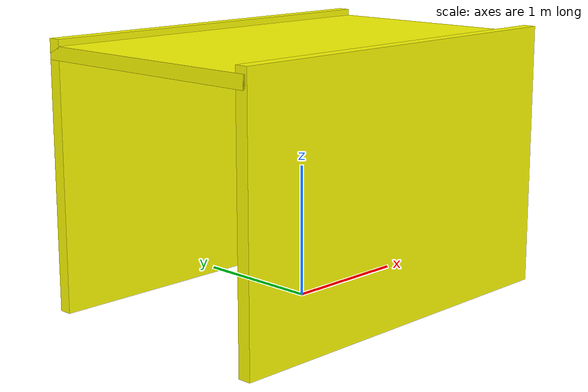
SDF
<?xml version="1.0"?>
<sdf version="1.5">
  <model name="rect_tunnel">
    <static>true</static>

    <link name="tunnel_link">

      <collision name="roof_collision">
        <pose>0 0 1.9 0 0 0</pose>
        <geometry>
          <box>
            <size>3.0 2.0 0.1</size>
          </box>
        </geometry>
      </collision>

      <collision name="left_wall_collision">
        <pose>0 0.95 1.0 0 0 0</pose>
        <geometry>
          <box>
            <!-- lunghezza 4 m, spessore 0.1, altezza 2 m -->
            <size>4.0 0.1 2.0</size>
          </box>
        </geometry>
      </collision>

      <collision name="right_wall_collision">
        <pose>0 -0.95 1.0 0 0 0</pose>
        <geometry>
          <box>
            <size>3.0 0.1 2.0</size>
          </box>
        </geometry>
      </collision>

      <visual name="roof_visual">
        <pose>0 0 1.9 0 0 0</pose>
        <geometry>
          <box>
            <size>3.0 2.0 0.1</size>
          </box>
        </geometry>
        <material>
          <ambient>1 1 0 1</ambient>
          <diffuse>1 1 0 1</diffuse>
        </material>
      </visual>

      <visual name="left_wall_visual">
        <pose>0 0.95 1.0 0 0 0</pose>
        <geometry>
          <box>
            <size>3.0 0.1 2.0</size>
          </box>
        </geometry>
        <material>
          <ambient>1 1 0 1</ambient>
          <diffuse>1 1 0 1</diffuse>
        </material>
      </visual>

      <visual name="right_wall_visual">
        <pose>0 -0.95 1.0 0 0 0</pose>
        <geometry>
          <box>
            <size>3.0 0.1 2.0</size>
          </box>
        </geometry>
        <material>
          <ambient>1 1 0 1</ambient>
          <diffuse>1 1 0 1</diffuse>
        </material>
      </visual>

    </link>
  </model>
</sdf>
